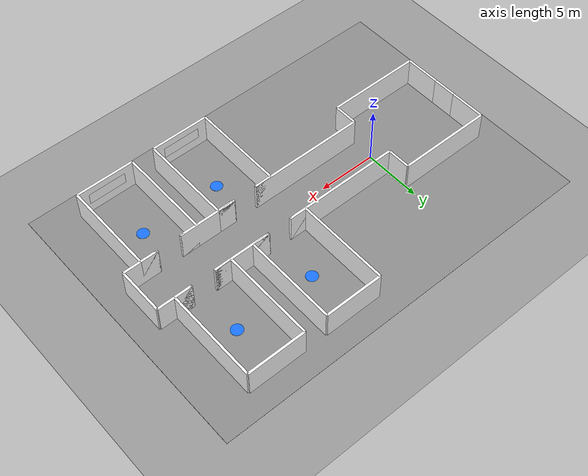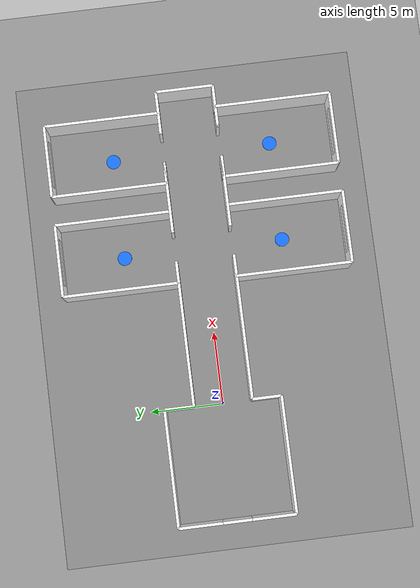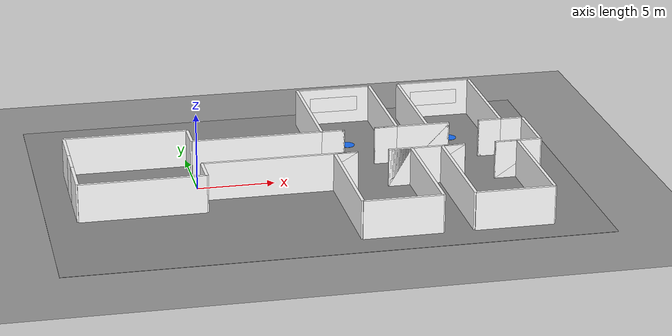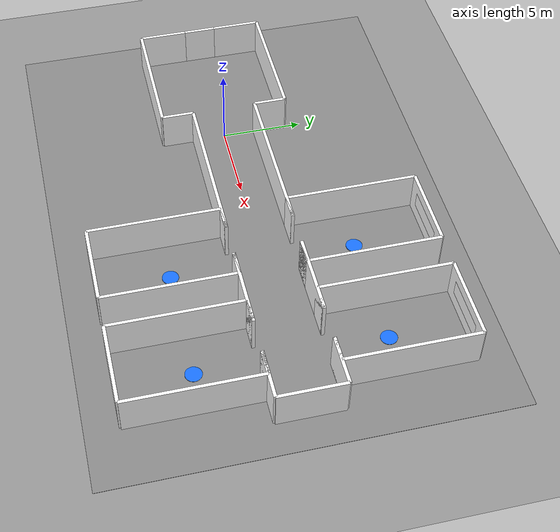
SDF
<?xml version="1.0"?>
<sdf version='1.9'>
  <world name='default'>

    <!-- ========== PLUGINS OBRIGATORIOS DO GAZEBO HARMONIC ========== -->
    <plugin filename="gz-sim-physics-system"
            name="gz::sim::systems::Physics"/>

    <plugin filename="gz-sim-user-commands-system"
            name="gz::sim::systems::UserCommands"/>

    <plugin filename="gz-sim-scene-broadcaster-system"
            name="gz::sim::systems::SceneBroadcaster"/>

    <!-- CRITICO: sem esse plugin o lidar nao publica nada -->
    <plugin filename="gz-sim-sensors-system"
            name="gz::sim::systems::Sensors">
      <render_engine>ogre2</render_engine>
    </plugin>

    <!-- ========== LUZ ========== -->
    <light name='sun' type='directional'>
      <cast_shadows>false</cast_shadows>
      <pose>0 0 10 0 -0 0</pose>
      <diffuse>1.0 1.0 1.0 1</diffuse>
      <specular>0.2 0.2 0.2 1</specular>
      <attenuation>
        <range>1000</range>
        <constant>0.9</constant>
        <linear>0.01</linear>
        <quadratic>0.001</quadratic>
      </attenuation>
      <direction>-0.5 0.1 -0.9</direction>
    </light>

    <!-- ========== CHAO ========== -->
    <model name='ground_plane'>
      <pose>0 0 0 0 0 0</pose>
      <static>1</static>
      <link name='link'>
        <collision name='collision'>
          <geometry>
            <plane>
              <normal>0 0 1</normal>
              <size>100 100</size>
            </plane>
          </geometry>
          <surface>
            <contact>
              <collide_bitmask>65535</collide_bitmask>
            </contact>
            <friction>
              <ode>
                <mu>100</mu>
                <mu2>50</mu2>
              </ode>
            </friction>
          </surface>
        </collision>
        <visual name='visual'>
          <cast_shadows>0</cast_shadows>
          <geometry>
            <plane>
              <normal>0 0 1</normal>
              <size>100 100</size>
            </plane>
          </geometry>
          <material>
            <ambient>0.6 0.6 0.6 1</ambient>
            <diffuse>0.6 0.6 0.6 1</diffuse>
          </material>
        </visual>
      </link>
    </model>

    <!-- ========== FISICA OTIMIZADA ========== -->
    <gravity>0 0 -9.8</gravity>
    <magnetic_field>6e-06 2.3e-05 -4.2e-05</magnetic_field>
    <atmosphere type='adiabatic'/>
    <physics name='default_physics' default='0' type='ode'>
      <max_step_size>0.004</max_step_size>
      <real_time_factor>1</real_time_factor>
      <real_time_update_rate>250</real_time_update_rate>
    </physics>

    <!-- ========== CENA ========== -->
    <scene>
      <grid>false</grid>
      <ambient>0.8 0.8 0.8 1</ambient>
      <background>0.9 0.9 0.9 1</background>
      <shadows>false</shadows>
    </scene>

    <audio>
      <device>default</device>
    </audio>
    <wind/>

    <spherical_coordinates>
      <surface_model>EARTH_WGS84</surface_model>
      <latitude_deg>0</latitude_deg>
      <longitude_deg>0</longitude_deg>
      <elevation>0</elevation>
      <heading_deg>0</heading_deg>
    </spherical_coordinates>

    <!-- ========== LOBBY + CORREDOR + 4 SALAS ==========
         Corredor 3m->4m, sala 4x7m->5x8m, porta 1.5m->2m (folga extra pro
         Ackermann do camaro_delivery, footprint 0.6x0.46m). -->
    <model name='corridor_rooms'>
      <static>true</static>
      <link name="link">
      <collision name="floor_col">
        <pose>7.0 0 0.01 0 0 0</pose>
        <geometry><box><size>34.0 24.0 0.02</size></box></geometry>
      </collision>
      <visual name="floor_vis">
        <pose>7.0 0 0.01 0 0 0</pose>
        <geometry><box><size>34.0 24.0 0.02</size></box></geometry>
        <material>
          <ambient>0.55 0.55 0.55 1</ambient>
          <diffuse>0.55 0.55 0.55 1</diffuse>
        </material>
      </visual>
      <collision name="lobby_north_col">
        <pose>-4.0 4.0 1.25 0 0 0.0</pose>
        <geometry><box><size>8.0 0.2 2.5</size></box></geometry>
      </collision>
      <visual name="lobby_north_vis">
        <pose>-4.0 4.0 1.25 0 0 0.0</pose>
        <geometry><box><size>8.0 0.2 2.5</size></box></geometry>
        <material><ambient>1 1 1 1</ambient><diffuse>1 1 1 1</diffuse><pbr><metal><albedo_map>materials/textures/wall.png</albedo_map><metalness>0</metalness><roughness>1</roughness></metal></pbr></material>
      </visual>
      <collision name="lobby_south_col">
        <pose>-4.0 -4.0 1.25 0 0 0.0</pose>
        <geometry><box><size>8.0 0.2 2.5</size></box></geometry>
      </collision>
      <visual name="lobby_south_vis">
        <pose>-4.0 -4.0 1.25 0 0 0.0</pose>
        <geometry><box><size>8.0 0.2 2.5</size></box></geometry>
        <material><ambient>1 1 1 1</ambient><diffuse>1 1 1 1</diffuse><pbr><metal><albedo_map>materials/textures/wall.png</albedo_map><metalness>0</metalness><roughness>1</roughness></metal></pbr></material>
      </visual>
      <collision name="lobby_west_a_col">
        <pose>-8.0 2.5 1.25 0 0 0.0</pose>
        <geometry><box><size>0.2 3.0 2.5</size></box></geometry>
      </collision>
      <visual name="lobby_west_a_vis">
        <pose>-8.0 2.5 1.25 0 0 0.0</pose>
        <geometry><box><size>0.2 3.0 2.5</size></box></geometry>
        <material><ambient>1 1 1 1</ambient><diffuse>1 1 1 1</diffuse><pbr><metal><albedo_map>materials/textures/wall.png</albedo_map><metalness>0</metalness><roughness>1</roughness></metal></pbr></material>
      </visual>
      <collision name="lobby_west_b_col">
        <pose>-8.0 -2.5 1.25 0 0 0.0</pose>
        <geometry><box><size>0.2 3.0 2.5</size></box></geometry>
      </collision>
      <visual name="lobby_west_b_vis">
        <pose>-8.0 -2.5 1.25 0 0 0.0</pose>
        <geometry><box><size>0.2 3.0 2.5</size></box></geometry>
        <material><ambient>1 1 1 1</ambient><diffuse>1 1 1 1</diffuse><pbr><metal><albedo_map>materials/textures/wall.png</albedo_map><metalness>0</metalness><roughness>1</roughness></metal></pbr></material>
      </visual>
            <collision name="lobby_west_entrance_col">
        <pose>-8.0 0.0 1.25 0 0 0.0</pose>
        <geometry><box><size>0.2 2.0 2.5</size></box></geometry>
      </collision>
      <visual name="lobby_west_entrance_vis">
        <pose>-8.0 0.0 1.25 0 0 0.0</pose>
        <geometry><box><size>0.2 2.0 2.5</size></box></geometry>
        <material><ambient>1 1 1 1</ambient><diffuse>1 1 1 1</diffuse><pbr><metal><albedo_map>materials/textures/wall.png</albedo_map><metalness>0</metalness><roughness>1</roughness></metal></pbr></material>
      </visual>
      <collision name="lobby_east_a_col">
        <pose>0.0 3.0 1.25 0 0 0.0</pose>
        <geometry><box><size>0.2 2.0 2.5</size></box></geometry>
      </collision>
      <visual name="lobby_east_a_vis">
        <pose>0.0 3.0 1.25 0 0 0.0</pose>
        <geometry><box><size>0.2 2.0 2.5</size></box></geometry>
        <material><ambient>1 1 1 1</ambient><diffuse>1 1 1 1</diffuse><pbr><metal><albedo_map>materials/textures/wall.png</albedo_map><metalness>0</metalness><roughness>1</roughness></metal></pbr></material>
      </visual>
      <collision name="lobby_east_b_col">
        <pose>0.0 -3.0 1.25 0 0 0.0</pose>
        <geometry><box><size>0.2 2.0 2.5</size></box></geometry>
      </collision>
      <visual name="lobby_east_b_vis">
        <pose>0.0 -3.0 1.25 0 0 0.0</pose>
        <geometry><box><size>0.2 2.0 2.5</size></box></geometry>
        <material><ambient>1 1 1 1</ambient><diffuse>1 1 1 1</diffuse><pbr><metal><albedo_map>materials/textures/wall.png</albedo_map><metalness>0</metalness><roughness>1</roughness></metal></pbr></material>
      </visual>
      <collision name="corridor_north_0_col">
        <pose>5.0 2.0 1.25 0 0 0.0</pose>
        <geometry><box><size>10.0 0.2 2.5</size></box></geometry>
      </collision>
      <visual name="corridor_north_0_vis">
        <pose>5.0 2.0 1.25 0 0 0.0</pose>
        <geometry><box><size>10.0 0.2 2.5</size></box></geometry>
        <material><ambient>1 1 1 1</ambient><diffuse>1 1 1 1</diffuse><pbr><metal><albedo_map>materials/textures/wall.png</albedo_map><metalness>0</metalness><roughness>1</roughness></metal></pbr></material>
      </visual>
      <collision name="corridor_north_1_col">
        <pose>14.5 2.0 1.25 0 0 0.0</pose>
        <geometry><box><size>5.0 0.2 2.5</size></box></geometry>
      </collision>
      <visual name="corridor_north_1_vis">
        <pose>14.5 2.0 1.25 0 0 0.0</pose>
        <geometry><box><size>5.0 0.2 2.5</size></box></geometry>
        <material><ambient>1 1 1 1</ambient><diffuse>1 1 1 1</diffuse><pbr><metal><albedo_map>materials/textures/wall.png</albedo_map><metalness>0</metalness><roughness>1</roughness></metal></pbr></material>
      </visual>
      <collision name="corridor_north_2_col">
        <pose>20.5 2.0 1.25 0 0 0.0</pose>
        <geometry><box><size>3.0 0.2 2.5</size></box></geometry>
      </collision>
      <visual name="corridor_north_2_vis">
        <pose>20.5 2.0 1.25 0 0 0.0</pose>
        <geometry><box><size>3.0 0.2 2.5</size></box></geometry>
        <material><ambient>1 1 1 1</ambient><diffuse>1 1 1 1</diffuse><pbr><metal><albedo_map>materials/textures/wall.png</albedo_map><metalness>0</metalness><roughness>1</roughness></metal></pbr></material>
      </visual>
      <collision name="corridor_south_0_col">
        <pose>5.0 -2.0 1.25 0 0 0.0</pose>
        <geometry><box><size>10.0 0.2 2.5</size></box></geometry>
      </collision>
      <visual name="corridor_south_0_vis">
        <pose>5.0 -2.0 1.25 0 0 0.0</pose>
        <geometry><box><size>10.0 0.2 2.5</size></box></geometry>
        <material><ambient>1 1 1 1</ambient><diffuse>1 1 1 1</diffuse><pbr><metal><albedo_map>materials/textures/wall.png</albedo_map><metalness>0</metalness><roughness>1</roughness></metal></pbr></material>
      </visual>
      <collision name="corridor_south_1_col">
        <pose>14.5 -2.0 1.25 0 0 0.0</pose>
        <geometry><box><size>5.0 0.2 2.5</size></box></geometry>
      </collision>
      <visual name="corridor_south_1_vis">
        <pose>14.5 -2.0 1.25 0 0 0.0</pose>
        <geometry><box><size>5.0 0.2 2.5</size></box></geometry>
        <material><ambient>1 1 1 1</ambient><diffuse>1 1 1 1</diffuse><pbr><metal><albedo_map>materials/textures/wall.png</albedo_map><metalness>0</metalness><roughness>1</roughness></metal></pbr></material>
      </visual>
      <collision name="corridor_south_2_col">
        <pose>20.5 -2.0 1.25 0 0 0.0</pose>
        <geometry><box><size>3.0 0.2 2.5</size></box></geometry>
      </collision>
      <visual name="corridor_south_2_vis">
        <pose>20.5 -2.0 1.25 0 0 0.0</pose>
        <geometry><box><size>3.0 0.2 2.5</size></box></geometry>
        <material><ambient>1 1 1 1</ambient><diffuse>1 1 1 1</diffuse><pbr><metal><albedo_map>materials/textures/wall.png</albedo_map><metalness>0</metalness><roughness>1</roughness></metal></pbr></material>
      </visual>
      <collision name="corridor_east_end_col">
        <pose>22.0 0.0 1.25 0 0 0.0</pose>
        <geometry><box><size>0.2 4.0 2.5</size></box></geometry>
      </collision>
      <visual name="corridor_east_end_vis">
        <pose>22.0 0.0 1.25 0 0 0.0</pose>
        <geometry><box><size>0.2 4.0 2.5</size></box></geometry>
        <material><ambient>1 1 1 1</ambient><diffuse>1 1 1 1</diffuse><pbr><metal><albedo_map>materials/textures/wall.png</albedo_map><metalness>0</metalness><roughness>1</roughness></metal></pbr></material>
      </visual>
      <collision name="room_A_doorwall_a_col">
        <pose>9.25 2.0 1.25 0 0 0.0</pose>
        <geometry><box><size>1.5 0.2 2.5</size></box></geometry>
      </collision>
      <visual name="room_A_doorwall_a_vis">
        <pose>9.25 2.0 1.25 0 0 0.0</pose>
        <geometry><box><size>1.5 0.2 2.5</size></box></geometry>
        <material><ambient>1 1 1 1</ambient><diffuse>1 1 1 1</diffuse><pbr><metal><albedo_map>materials/textures/wall.png</albedo_map><metalness>0</metalness><roughness>1</roughness></metal></pbr></material>
      </visual>
      <collision name="room_A_doorwall_b_col">
        <pose>12.75 2.0 1.25 0 0 0.0</pose>
        <geometry><box><size>1.5 0.2 2.5</size></box></geometry>
      </collision>
      <visual name="room_A_doorwall_b_vis">
        <pose>12.75 2.0 1.25 0 0 0.0</pose>
        <geometry><box><size>1.5 0.2 2.5</size></box></geometry>
        <material><ambient>1 1 1 1</ambient><diffuse>1 1 1 1</diffuse><pbr><metal><albedo_map>materials/textures/wall.png</albedo_map><metalness>0</metalness><roughness>1</roughness></metal></pbr></material>
      </visual>
      <collision name="room_A_backwall_col">
        <pose>11.0 10.0 1.25 0 0 0.0</pose>
        <geometry><box><size>5.0 0.2 2.5</size></box></geometry>
      </collision>
      <visual name="room_A_backwall_vis">
        <pose>11.0 10.0 1.25 0 0 0.0</pose>
        <geometry><box><size>5.0 0.2 2.5</size></box></geometry>
        <material><ambient>1 1 1 1</ambient><diffuse>1 1 1 1</diffuse><pbr><metal><albedo_map>materials/textures/wall.png</albedo_map><metalness>0</metalness><roughness>1</roughness></metal></pbr></material>
      </visual>
      <collision name="room_A_sidewall_1_col">
        <pose>8.5 6.0 1.25 0 0 0.0</pose>
        <geometry><box><size>0.2 8.0 2.5</size></box></geometry>
      </collision>
      <visual name="room_A_sidewall_1_vis">
        <pose>8.5 6.0 1.25 0 0 0.0</pose>
        <geometry><box><size>0.2 8.0 2.5</size></box></geometry>
        <material><ambient>1 1 1 1</ambient><diffuse>1 1 1 1</diffuse><pbr><metal><albedo_map>materials/textures/wall.png</albedo_map><metalness>0</metalness><roughness>1</roughness></metal></pbr></material>
      </visual>
      <collision name="room_A_sidewall_2_col">
        <pose>13.5 6.0 1.25 0 0 0.0</pose>
        <geometry><box><size>0.2 8.0 2.5</size></box></geometry>
      </collision>
      <visual name="room_A_sidewall_2_vis">
        <pose>13.5 6.0 1.25 0 0 0.0</pose>
        <geometry><box><size>0.2 8.0 2.5</size></box></geometry>
        <material><ambient>1 1 1 1</ambient><diffuse>1 1 1 1</diffuse><pbr><metal><albedo_map>materials/textures/wall.png</albedo_map><metalness>0</metalness><roughness>1</roughness></metal></pbr></material>
      </visual>
      <collision name="room_B_doorwall_a_col">
        <pose>9.25 -2.0 1.25 0 0 0.0</pose>
        <geometry><box><size>1.5 0.2 2.5</size></box></geometry>
      </collision>
      <visual name="room_B_doorwall_a_vis">
        <pose>9.25 -2.0 1.25 0 0 0.0</pose>
        <geometry><box><size>1.5 0.2 2.5</size></box></geometry>
        <material><ambient>1 1 1 1</ambient><diffuse>1 1 1 1</diffuse><pbr><metal><albedo_map>materials/textures/wall.png</albedo_map><metalness>0</metalness><roughness>1</roughness></metal></pbr></material>
      </visual>
      <collision name="room_B_doorwall_b_col">
        <pose>12.75 -2.0 1.25 0 0 0.0</pose>
        <geometry><box><size>1.5 0.2 2.5</size></box></geometry>
      </collision>
      <visual name="room_B_doorwall_b_vis">
        <pose>12.75 -2.0 1.25 0 0 0.0</pose>
        <geometry><box><size>1.5 0.2 2.5</size></box></geometry>
        <material><ambient>1 1 1 1</ambient><diffuse>1 1 1 1</diffuse><pbr><metal><albedo_map>materials/textures/wall.png</albedo_map><metalness>0</metalness><roughness>1</roughness></metal></pbr></material>
      </visual>
      <collision name="room_B_backwall_col">
        <pose>11.0 -10.0 1.25 0 0 0.0</pose>
        <geometry><box><size>5.0 0.2 2.5</size></box></geometry>
      </collision>
      <visual name="room_B_backwall_vis">
        <pose>11.0 -10.0 1.25 0 0 0.0</pose>
        <geometry><box><size>5.0 0.2 2.5</size></box></geometry>
        <material><ambient>1 1 1 1</ambient><diffuse>1 1 1 1</diffuse><pbr><metal><albedo_map>materials/textures/wall.png</albedo_map><metalness>0</metalness><roughness>1</roughness></metal></pbr></material>
      </visual>
      <collision name="room_B_sidewall_1_col">
        <pose>8.5 -6.0 1.25 0 0 0.0</pose>
        <geometry><box><size>0.2 8.0 2.5</size></box></geometry>
      </collision>
      <visual name="room_B_sidewall_1_vis">
        <pose>8.5 -6.0 1.25 0 0 0.0</pose>
        <geometry><box><size>0.2 8.0 2.5</size></box></geometry>
        <material><ambient>1 1 1 1</ambient><diffuse>1 1 1 1</diffuse><pbr><metal><albedo_map>materials/textures/wall.png</albedo_map><metalness>0</metalness><roughness>1</roughness></metal></pbr></material>
      </visual>
      <collision name="room_B_sidewall_2_col">
        <pose>13.5 -6.0 1.25 0 0 0.0</pose>
        <geometry><box><size>0.2 8.0 2.5</size></box></geometry>
      </collision>
      <visual name="room_B_sidewall_2_vis">
        <pose>13.5 -6.0 1.25 0 0 0.0</pose>
        <geometry><box><size>0.2 8.0 2.5</size></box></geometry>
        <material><ambient>1 1 1 1</ambient><diffuse>1 1 1 1</diffuse><pbr><metal><albedo_map>materials/textures/wall.png</albedo_map><metalness>0</metalness><roughness>1</roughness></metal></pbr></material>
      </visual>
      <collision name="room_C_doorwall_a_col">
        <pose>16.25 2.0 1.25 0 0 0.0</pose>
        <geometry><box><size>1.5 0.2 2.5</size></box></geometry>
      </collision>
      <visual name="room_C_doorwall_a_vis">
        <pose>16.25 2.0 1.25 0 0 0.0</pose>
        <geometry><box><size>1.5 0.2 2.5</size></box></geometry>
        <material><ambient>1 1 1 1</ambient><diffuse>1 1 1 1</diffuse><pbr><metal><albedo_map>materials/textures/wall.png</albedo_map><metalness>0</metalness><roughness>1</roughness></metal></pbr></material>
      </visual>
      <collision name="room_C_doorwall_b_col">
        <pose>19.75 2.0 1.25 0 0 0.0</pose>
        <geometry><box><size>1.5 0.2 2.5</size></box></geometry>
      </collision>
      <visual name="room_C_doorwall_b_vis">
        <pose>19.75 2.0 1.25 0 0 0.0</pose>
        <geometry><box><size>1.5 0.2 2.5</size></box></geometry>
        <material><ambient>1 1 1 1</ambient><diffuse>1 1 1 1</diffuse><pbr><metal><albedo_map>materials/textures/wall.png</albedo_map><metalness>0</metalness><roughness>1</roughness></metal></pbr></material>
      </visual>
      <collision name="room_C_backwall_col">
        <pose>18.0 10.0 1.25 0 0 0.0</pose>
        <geometry><box><size>5.0 0.2 2.5</size></box></geometry>
      </collision>
      <visual name="room_C_backwall_vis">
        <pose>18.0 10.0 1.25 0 0 0.0</pose>
        <geometry><box><size>5.0 0.2 2.5</size></box></geometry>
        <material><ambient>1 1 1 1</ambient><diffuse>1 1 1 1</diffuse><pbr><metal><albedo_map>materials/textures/wall.png</albedo_map><metalness>0</metalness><roughness>1</roughness></metal></pbr></material>
      </visual>
      <collision name="room_C_sidewall_1_col">
        <pose>15.5 6.0 1.25 0 0 0.0</pose>
        <geometry><box><size>0.2 8.0 2.5</size></box></geometry>
      </collision>
      <visual name="room_C_sidewall_1_vis">
        <pose>15.5 6.0 1.25 0 0 0.0</pose>
        <geometry><box><size>0.2 8.0 2.5</size></box></geometry>
        <material><ambient>1 1 1 1</ambient><diffuse>1 1 1 1</diffuse><pbr><metal><albedo_map>materials/textures/wall.png</albedo_map><metalness>0</metalness><roughness>1</roughness></metal></pbr></material>
      </visual>
      <collision name="room_C_sidewall_2_col">
        <pose>20.5 6.0 1.25 0 0 0.0</pose>
        <geometry><box><size>0.2 8.0 2.5</size></box></geometry>
      </collision>
      <visual name="room_C_sidewall_2_vis">
        <pose>20.5 6.0 1.25 0 0 0.0</pose>
        <geometry><box><size>0.2 8.0 2.5</size></box></geometry>
        <material><ambient>1 1 1 1</ambient><diffuse>1 1 1 1</diffuse><pbr><metal><albedo_map>materials/textures/wall.png</albedo_map><metalness>0</metalness><roughness>1</roughness></metal></pbr></material>
      </visual>
      <collision name="room_D_doorwall_a_col">
        <pose>16.25 -2.0 1.25 0 0 0.0</pose>
        <geometry><box><size>1.5 0.2 2.5</size></box></geometry>
      </collision>
      <visual name="room_D_doorwall_a_vis">
        <pose>16.25 -2.0 1.25 0 0 0.0</pose>
        <geometry><box><size>1.5 0.2 2.5</size></box></geometry>
        <material><ambient>1 1 1 1</ambient><diffuse>1 1 1 1</diffuse><pbr><metal><albedo_map>materials/textures/wall.png</albedo_map><metalness>0</metalness><roughness>1</roughness></metal></pbr></material>
      </visual>
      <collision name="room_D_doorwall_b_col">
        <pose>19.75 -2.0 1.25 0 0 0.0</pose>
        <geometry><box><size>1.5 0.2 2.5</size></box></geometry>
      </collision>
      <visual name="room_D_doorwall_b_vis">
        <pose>19.75 -2.0 1.25 0 0 0.0</pose>
        <geometry><box><size>1.5 0.2 2.5</size></box></geometry>
        <material><ambient>1 1 1 1</ambient><diffuse>1 1 1 1</diffuse><pbr><metal><albedo_map>materials/textures/wall.png</albedo_map><metalness>0</metalness><roughness>1</roughness></metal></pbr></material>
      </visual>
      <collision name="room_D_backwall_col">
        <pose>18.0 -10.0 1.25 0 0 0.0</pose>
        <geometry><box><size>5.0 0.2 2.5</size></box></geometry>
      </collision>
      <visual name="room_D_backwall_vis">
        <pose>18.0 -10.0 1.25 0 0 0.0</pose>
        <geometry><box><size>5.0 0.2 2.5</size></box></geometry>
        <material><ambient>1 1 1 1</ambient><diffuse>1 1 1 1</diffuse><pbr><metal><albedo_map>materials/textures/wall.png</albedo_map><metalness>0</metalness><roughness>1</roughness></metal></pbr></material>
      </visual>
      <collision name="room_D_sidewall_1_col">
        <pose>15.5 -6.0 1.25 0 0 0.0</pose>
        <geometry><box><size>0.2 8.0 2.5</size></box></geometry>
      </collision>
      <visual name="room_D_sidewall_1_vis">
        <pose>15.5 -6.0 1.25 0 0 0.0</pose>
        <geometry><box><size>0.2 8.0 2.5</size></box></geometry>
        <material><ambient>1 1 1 1</ambient><diffuse>1 1 1 1</diffuse><pbr><metal><albedo_map>materials/textures/wall.png</albedo_map><metalness>0</metalness><roughness>1</roughness></metal></pbr></material>
      </visual>
      <collision name="room_D_sidewall_2_col">
        <pose>20.5 -6.0 1.25 0 0 0.0</pose>
        <geometry><box><size>0.2 8.0 2.5</size></box></geometry>
      </collision>
      <visual name="room_D_sidewall_2_vis">
        <pose>20.5 -6.0 1.25 0 0 0.0</pose>
        <geometry><box><size>0.2 8.0 2.5</size></box></geometry>
        <material><ambient>1 1 1 1</ambient><diffuse>1 1 1 1</diffuse><pbr><metal><albedo_map>materials/textures/wall.png</albedo_map><metalness>0</metalness><roughness>1</roughness></metal></pbr></material>
      </visual>
      <visual name="plate_A_vis">
        <pose>11.0 9.89 1.375 1.5708 0 0.0</pose>
        <geometry><plane><size>3.25 1.0</size></plane></geometry>
        <material>
          <ambient>1 1 1 1</ambient>
          <diffuse>1 1 1 1</diffuse>
          <pbr>
            <metal>
              <albedo_map>materials/textures/sala_a.png</albedo_map>
              <metalness>0.0</metalness>
              <roughness>1.0</roughness>
            </metal>
          </pbr>
        </material>
      </visual>
      <visual name="plate_B_vis">
        <pose>11.0 -9.89 1.375 1.5708 0 3.14159265</pose>
        <geometry><plane><size>3.25 1.0</size></plane></geometry>
        <material>
          <ambient>1 1 1 1</ambient>
          <diffuse>1 1 1 1</diffuse>
          <pbr>
            <metal>
              <albedo_map>materials/textures/sala_b.png</albedo_map>
              <metalness>0.0</metalness>
              <roughness>1.0</roughness>
            </metal>
          </pbr>
        </material>
      </visual>
      <visual name="plate_C_vis">
        <pose>18.0 9.89 1.375 1.5708 0 0.0</pose>
        <geometry><plane><size>3.25 1.0</size></plane></geometry>
        <material>
          <ambient>1 1 1 1</ambient>
          <diffuse>1 1 1 1</diffuse>
          <pbr>
            <metal>
              <albedo_map>materials/textures/sala_c.png</albedo_map>
              <metalness>0.0</metalness>
              <roughness>1.0</roughness>
            </metal>
          </pbr>
        </material>
      </visual>
      <visual name="plate_D_vis">
        <pose>18.0 -9.89 1.375 1.5708 0 3.14159265</pose>
        <geometry><plane><size>3.25 1.0</size></plane></geometry>
        <material>
          <ambient>1 1 1 1</ambient>
          <diffuse>1 1 1 1</diffuse>
          <pbr>
            <metal>
              <albedo_map>materials/textures/sala_d.png</albedo_map>
              <metalness>0.0</metalness>
              <roughness>1.0</roughness>
            </metal>
          </pbr>
        </material>
      </visual></link>
    </model>

    <!-- ===== CHECKPOINTS AZUIS (na frente de cada pessoa) ===== -->
    <model name='checkpoint_a'>
      <static>true</static>
      <link name='link'>
        <visual name='vis'>
          <pose>11 5.6 0.02 0 0 0</pose>
          <geometry><cylinder><radius>0.5</radius><length>0.04</length></cylinder></geometry>
          <material>
            <ambient>0.1 0.35 0.95 1</ambient>
            <diffuse>0.1 0.45 1 1</diffuse>
            <emissive>0.05 0.2 0.6 1</emissive>
          </material>
        </visual>
      </link>
    </model>

    <model name='checkpoint_b'>
      <static>true</static>
      <link name='link'>
        <visual name='vis'>
          <pose>11 -5.6 0.02 0 0 0</pose>
          <geometry><cylinder><radius>0.5</radius><length>0.04</length></cylinder></geometry>
          <material>
            <ambient>0.1 0.35 0.95 1</ambient>
            <diffuse>0.1 0.45 1 1</diffuse>
            <emissive>0.05 0.2 0.6 1</emissive>
          </material>
        </visual>
      </link>
    </model>

    <model name='checkpoint_c'>
      <static>true</static>
      <link name='link'>
        <visual name='vis'>
          <pose>18 5.6 0.02 0 0 0</pose>
          <geometry><cylinder><radius>0.5</radius><length>0.04</length></cylinder></geometry>
          <material>
            <ambient>0.1 0.35 0.95 1</ambient>
            <diffuse>0.1 0.45 1 1</diffuse>
            <emissive>0.05 0.2 0.6 1</emissive>
          </material>
        </visual>
      </link>
    </model>

    <model name='checkpoint_d'>
      <static>true</static>
      <link name='link'>
        <visual name='vis'>
          <pose>18 -5.6 0.02 0 0 0</pose>
          <geometry><cylinder><radius>0.5</radius><length>0.04</length></cylinder></geometry>
          <material>
            <ambient>0.1 0.35 0.95 1</ambient>
            <diffuse>0.1 0.45 1 1</diffuse>
            <emissive>0.05 0.2 0.6 1</emissive>
          </material>
        </visual>
      </link>
    </model>

    <!-- ========== CAMERA INICIAL ========== -->
    <gui fullscreen='0'>
      <camera name='user_camera'>
        <pose>10 -18 14 0 0.6 1.57</pose>
        <view_controller>orbit</view_controller>
        <projection_type>perspective</projection_type>
      </camera>
    </gui>

  </world>
</sdf>
